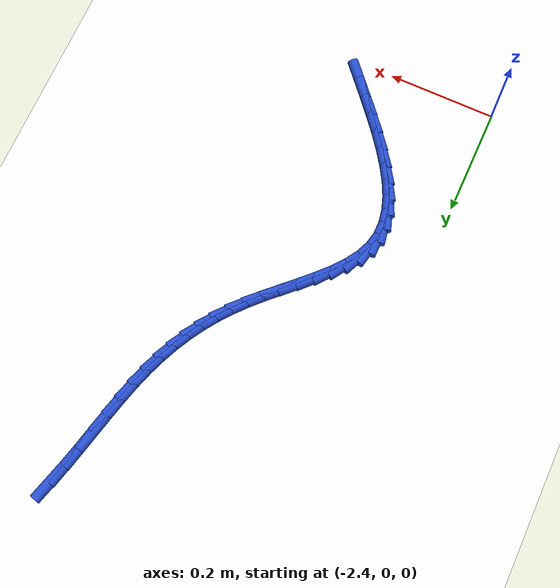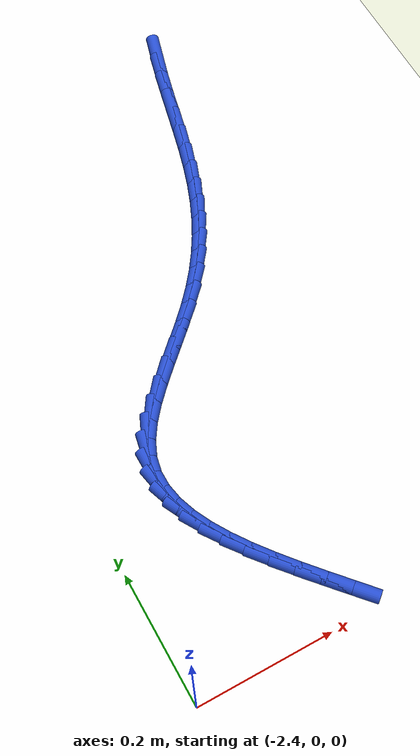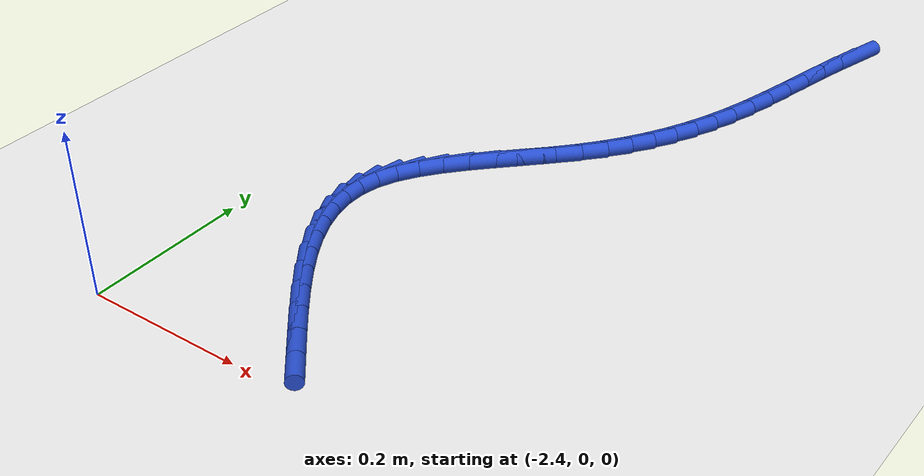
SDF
<sdf version="1.6">
 <world name="default">
  <model name="ground_plane">
   <static>1</static>
   <link name="link">
    <collision name="collision">
     <geometry><plane><normal>0 0 1</normal><size>100 100</size></plane></geometry>
     <surface><friction><ode><mu>100</mu><mu2>50</mu2></ode></friction></surface>
    </collision>
    <visual name="visual">
     <cast_shadows>0</cast_shadows>
     <geometry><plane><normal>0 0 1</normal><size>100 100</size></plane></geometry>
     <material>
      <script><uri>file://media/materials/scripts/gazebo.material</uri><name>Gazebo/WhiteGlow</name></script>
     </material>
    </visual>
   </link>
  </model>
  <model name="line">
   <link name="link_102">
    <pose>-1.9660466423692637 0.935365379532956 0.01 0 1.57 1.2927072455384423</pose>
    <collision name="collision">
     <geometry><cylinder><radius>0.01</radius><length>0.08</length></cylinder></geometry>
    </collision>
    <visual name="visual">
     <material>
      <script><name>Gazebo/Blue</name><uri>file://media/materials/scripts/gazebo.material</uri></script>
     </material>
     <geometry><cylinder><radius>0.01</radius><length>0.08</length></cylinder></geometry>
    </visual>
   </link>
   <link name="link_103">
    <pose>-1.975867164708934 0.9009661303526519 0.01 0 1.57 1.3221698426986555</pose>
    <collision name="collision">
     <geometry><cylinder><radius>0.01</radius><length>0.08</length></cylinder></geometry>
    </collision>
    <visual name="visual">
     <material>
      <script><name>Gazebo/Blue</name><uri>file://media/materials/scripts/gazebo.material</uri></script>
     </material>
     <geometry><cylinder><radius>0.01</radius><length>0.08</length></cylinder></geometry>
    </visual>
   </link>
   <link name="link_104">
    <pose>-1.9848904571305297 0.8654244768239611 0.01 0 1.57 1.3371867595751015</pose>
    <collision name="collision">
     <geometry><cylinder><radius>0.01</radius><length>0.08</length></cylinder></geometry>
    </collision>
    <visual name="visual">
     <material>
      <script><name>Gazebo/Blue</name><uri>file://media/materials/scripts/gazebo.material</uri></script>
     </material>
     <geometry><cylinder><radius>0.01</radius><length>0.08</length></cylinder></geometry>
    </visual>
   </link>
   <link name="link_105">
    <pose>-1.9934611134898959 0.8294063624086807 0.01 0 1.57 1.3388503457237175</pose>
    <collision name="collision">
     <geometry><cylinder><radius>0.01</radius><length>0.08</length></cylinder></geometry>
    </collision>
    <visual name="visual">
     <material>
      <script><name>Gazebo/Blue</name><uri>file://media/materials/scripts/gazebo.material</uri></script>
     </material>
     <geometry><cylinder><radius>0.01</radius><length>0.08</length></cylinder></geometry>
    </visual>
   </link>
   <link name="link_106">
    <pose>-2.001923727642877 0.7935777305686079 0.01 0 1.57 1.3270057661451578</pose>
    <collision name="collision">
     <geometry><cylinder><radius>0.01</radius><length>0.08</length></cylinder></geometry>
    </collision>
    <visual name="visual">
     <material>
      <script><name>Gazebo/Blue</name><uri>file://media/materials/scripts/gazebo.material</uri></script>
     </material>
     <geometry><cylinder><radius>0.01</radius><length>0.08</length></cylinder></geometry>
    </visual>
   </link>
   <link name="link_107">
    <pose>-2.0106228934453196 0.7586045247655403 0.01 0 1.57 1.300180234724623</pose>
    <collision name="collision">
     <geometry><cylinder><radius>0.01</radius><length>0.08</length></cylinder></geometry>
    </collision>
    <visual name="visual">
     <material>
      <script><name>Gazebo/Blue</name><uri>file://media/materials/scripts/gazebo.material</uri></script>
     </material>
     <geometry><cylinder><radius>0.01</radius><length>0.08</length></cylinder></geometry>
    </visual>
   </link>
   <link name="link_108">
    <pose>-2.019903180853616 0.7251525883459156 0.01 0 1.57 1.258384236811561</pose>
    <collision name="collision">
     <geometry><cylinder><radius>0.01</radius><length>0.08</length></cylinder></geometry>
    </collision>
    <visual name="visual">
     <material>
      <script><name>Gazebo/Blue</name><uri>file://media/materials/scripts/gazebo.material</uri></script>
     </material>
     <geometry><cylinder><radius>0.01</radius><length>0.08</length></cylinder></geometry>
    </visual>
   </link>
   <link name="link_109">
    <pose>-2.0300633547259195 0.6936958860451435 0.01 0 1.57 1.2089016913327766</pose>
    <collision name="collision">
     <geometry><cylinder><radius>0.01</radius><length>0.08</length></cylinder></geometry>
    </collision>
    <visual name="visual">
     <material>
      <script><name>Gazebo/Blue</name><uri>file://media/materials/scripts/gazebo.material</uri></script>
     </material>
     <geometry><cylinder><radius>0.01</radius><length>0.08</length></cylinder></geometry>
    </visual>
   </link>
   <link name="link_110">
    <pose>-2.04126098740377 0.6641169238960533 0.01 0 1.57 1.154032345566911</pose>
    <collision name="collision">
     <geometry><cylinder><radius>0.01</radius><length>0.08</length></cylinder></geometry>
    </collision>
    <visual name="visual">
     <material>
      <script><name>Gazebo/Blue</name><uri>file://media/materials/scripts/gazebo.material</uri></script>
     </material>
     <geometry><cylinder><radius>0.01</radius><length>0.08</length></cylinder></geometry>
    </visual>
   </link>
   <link name="link_111">
    <pose>-2.053626532942096 0.6361846088045469 0.01 0 1.57 1.0949889726988837</pose>
    <collision name="collision">
     <geometry><cylinder><radius>0.01</radius><length>0.08</length></cylinder></geometry>
    </collision>
    <visual name="visual">
     <material>
      <script><name>Gazebo/Blue</name><uri>file://media/materials/scripts/gazebo.material</uri></script>
     </material>
     <geometry><cylinder><radius>0.01</radius><length>0.08</length></cylinder></geometry>
    </visual>
   </link>
   <link name="link_112">
    <pose>-2.067290445395825 0.6096678476765265 0.01 0 1.57 1.0334780994776314</pose>
    <collision name="collision">
     <geometry><cylinder><radius>0.01</radius><length>0.08</length></cylinder></geometry>
    </collision>
    <visual name="visual">
     <material>
      <script><name>Gazebo/Blue</name><uri>file://media/materials/scripts/gazebo.material</uri></script>
     </material>
     <geometry><cylinder><radius>0.01</radius><length>0.08</length></cylinder></geometry>
    </visual>
   </link>
   <link name="link_113">
    <pose>-2.082383178819885 0.5843355474178942 0.01 0 1.57 0.9715376107698199</pose>
    <collision name="collision">
     <geometry><cylinder><radius>0.01</radius><length>0.08</length></cylinder></geometry>
    </collision>
    <visual name="visual">
     <material>
      <script><name>Gazebo/Blue</name><uri>file://media/materials/scripts/gazebo.material</uri></script>
     </material>
     <geometry><cylinder><radius>0.01</radius><length>0.08</length></cylinder></geometry>
    </visual>
   </link>
   <link name="link_114">
    <pose>-2.099035187269203 0.5599566149345513 0.01 0 1.57 0.911279566574505</pose>
    <collision name="collision">
     <geometry><cylinder><radius>0.01</radius><length>0.08</length></cylinder></geometry>
    </collision>
    <visual name="visual">
     <material>
      <script><name>Gazebo/Blue</name><uri>file://media/materials/scripts/gazebo.material</uri></script>
     </material>
     <geometry><cylinder><radius>0.01</radius><length>0.08</length></cylinder></geometry>
    </visual>
   </link>
   <link name="link_115">
    <pose>-2.117376924798707 0.5362999571324003 0.01 0 1.57 0.854609754963089</pose>
    <collision name="collision">
     <geometry><cylinder><radius>0.01</radius><length>0.08</length></cylinder></geometry>
    </collision>
    <visual name="visual">
     <material>
      <script><name>Gazebo/Blue</name><uri>file://media/materials/scripts/gazebo.material</uri></script>
     </material>
     <geometry><cylinder><radius>0.01</radius><length>0.08</length></cylinder></geometry>
    </visual>
   </link>
   <link name="link_116">
    <pose>-2.1375388454633253 0.5131344809173431 0.01 0 1.57 0.8042039459244709</pose>
    <collision name="collision">
     <geometry><cylinder><radius>0.01</radius><length>0.08</length></cylinder></geometry>
    </collision>
    <visual name="visual">
     <material>
      <script><name>Gazebo/Blue</name><uri>file://media/materials/scripts/gazebo.material</uri></script>
     </material>
     <geometry><cylinder><radius>0.01</radius><length>0.08</length></cylinder></geometry>
    </visual>
   </link>
   <link name="link_117">
    <pose>-2.1595913467042447 0.4902365519960121 0.01 0 1.57 0.7726773357318931</pose>
    <collision name="collision">
     <geometry><cylinder><radius>0.01</radius><length>0.08</length></cylinder></geometry>
    </collision>
    <visual name="visual">
     <material>
      <script><name>Gazebo/Blue</name><uri>file://media/materials/scripts/gazebo.material</uri></script>
     </material>
     <geometry><cylinder><radius>0.01</radius><length>0.08</length></cylinder></geometry>
    </visual>
   </link>
   <link name="link_118">
    <pose>-2.1829510403541015 0.46746373373623074 0.01 0 1.57 0.7651176140945208</pose>
    <collision name="collision">
     <geometry><cylinder><radius>0.01</radius><length>0.08</length></cylinder></geometry>
    </collision>
    <visual name="visual">
     <material>
      <script><name>Gazebo/Blue</name><uri>file://media/materials/scripts/gazebo.material</uri></script>
     </material>
     <geometry><cylinder><radius>0.01</radius><length>0.08</length></cylinder></geometry>
    </visual>
   </link>
   <link name="link_119">
    <pose>-2.2066328975224243 0.4447234717408062 0.01 0 1.57 0.7807354393282722</pose>
    <collision name="collision">
     <geometry><cylinder><radius>0.01</radius><length>0.08</length></cylinder></geometry>
    </collision>
    <visual name="visual">
     <material>
      <script><name>Gazebo/Blue</name><uri>file://media/materials/scripts/gazebo.material</uri></script>
     </material>
     <geometry><cylinder><radius>0.01</radius><length>0.08</length></cylinder></geometry>
    </visual>
   </link>
   <link name="link_120">
    <pose>-2.2296460452880202 0.4219239374187126 0.01 0 1.57 0.821430380301404</pose>
    <collision name="collision">
     <geometry><cylinder><radius>0.01</radius><length>0.08</length></cylinder></geometry>
    </collision>
    <visual name="visual">
     <material>
      <script><name>Gazebo/Blue</name><uri>file://media/materials/scripts/gazebo.material</uri></script>
     </material>
     <geometry><cylinder><radius>0.01</radius><length>0.08</length></cylinder></geometry>
    </visual>
   </link>
   <link name="link_121">
    <pose>-2.2509996107296977 0.398973302178924 0.01 0 1.57 0.8921698240808598</pose>
    <collision name="collision">
     <geometry><cylinder><radius>0.01</radius><length>0.08</length></cylinder></geometry>
    </collision>
    <visual name="visual">
     <material>
      <script><name>Gazebo/Blue</name><uri>file://media/materials/scripts/gazebo.material</uri></script>
     </material>
     <geometry><cylinder><radius>0.01</radius><length>0.08</length></cylinder></geometry>
    </visual>
   </link>
   <link name="link_122">
    <pose>-2.2697027209262637 0.3757797374304147 0.01 0 1.57 1.001372926383263</pose>
    <collision name="collision">
     <geometry><cylinder><radius>0.01</radius><length>0.08</length></cylinder></geometry>
    </collision>
    <visual name="visual">
     <material>
      <script><name>Gazebo/Blue</name><uri>file://media/materials/scripts/gazebo.material</uri></script>
     </material>
     <geometry><cylinder><radius>0.01</radius><length>0.08</length></cylinder></geometry>
    </visual>
   </link>
   <link name="link_123">
    <pose>-2.284764502956528 0.35225141458215914 0.01 0 1.57 1.160163358918053</pose>
    <collision name="collision">
     <geometry><cylinder><radius>0.01</radius><length>0.08</length></cylinder></geometry>
    </collision>
    <visual name="visual">
     <material>
      <script><name>Gazebo/Blue</name><uri>file://media/materials/scripts/gazebo.material</uri></script>
     </material>
     <geometry><cylinder><radius>0.01</radius><length>0.08</length></cylinder></geometry>
    </visual>
   </link>
   <link name="link_124">
    <pose>-2.295194086019718 0.3282965052130225 0.01 0 1.57 1.3664664401117363</pose>
    <collision name="collision">
     <geometry><cylinder><radius>0.01</radius><length>0.08</length></cylinder></geometry>
    </collision>
    <visual name="visual">
     <material>
      <script><name>Gazebo/Blue</name><uri>file://media/materials/scripts/gazebo.material</uri></script>
     </material>
     <geometry><cylinder><radius>0.01</radius><length>0.08</length></cylinder></geometry>
    </visual>
   </link>
   <link name="link_125">
    <pose>-2.3002611669103374 0.3038440580111148 0.01 0 1.57 -1.5689652550183486</pose>
    <collision name="collision">
     <geometry><cylinder><radius>0.01</radius><length>0.08</length></cylinder></geometry>
    </collision>
    <visual name="visual">
     <material>
      <script><name>Gazebo/Blue</name><uri>file://media/materials/scripts/gazebo.material</uri></script>
     </material>
     <geometry><cylinder><radius>0.01</radius><length>0.08</length></cylinder></geometry>
    </visual>
   </link>
   <link name="link_126">
    <pose>-2.300215495511063 0.2789016451485018 0.01 0 1.57 -1.388697299877915</pose>
    <collision name="collision">
     <geometry><cylinder><radius>0.01</radius><length>0.08</length></cylinder></geometry>
    </collision>
    <visual name="visual">
     <material>
      <script><name>Gazebo/Blue</name><uri>file://media/materials/scripts/gazebo.material</uri></script>
     </material>
     <geometry><cylinder><radius>0.01</radius><length>0.08</length></cylinder></geometry>
    </visual>
   </link>
   <link name="link_127">
    <pose>-2.2955371986942152 0.2534952969849416 0.01 0 1.57 -1.2415412085038042</pose>
    <collision name="collision">
     <geometry><cylinder><radius>0.01</radius><length>0.08</length></cylinder></geometry>
    </collision>
    <visual name="visual">
     <material>
      <script><name>Gazebo/Blue</name><uri>file://media/materials/scripts/gazebo.material</uri></script>
     </material>
     <geometry><cylinder><radius>0.01</radius><length>0.08</length></cylinder></geometry>
    </visual>
   </link>
   <link name="link_128">
    <pose>-2.286706403332114 0.2276510438801922 0.01 0 1.57 -1.1263693836089619</pose>
    <collision name="collision">
     <geometry><cylinder><radius>0.01</radius><length>0.08</length></cylinder></geometry>
    </collision>
    <visual name="visual">
     <material>
      <script><name>Gazebo/Blue</name><uri>file://media/materials/scripts/gazebo.material</uri></script>
     </material>
     <geometry><cylinder><radius>0.01</radius><length>0.08</length></cylinder></geometry>
    </visual>
   </link>
   <link name="link_129">
    <pose>-2.2742032362970797 0.20139491619401156 0.01 0 1.57 -1.03841263760796</pose>
    <collision name="collision">
     <geometry><cylinder><radius>0.01</radius><length>0.08</length></cylinder></geometry>
    </collision>
    <visual name="visual">
     <material>
      <script><name>Gazebo/Blue</name><uri>file://media/materials/scripts/gazebo.material</uri></script>
     </material>
     <geometry><cylinder><radius>0.01</radius><length>0.08</length></cylinder></geometry>
    </visual>
   </link>
   <link name="link_130">
    <pose>-2.2585078244614323 0.17475294428615773 0.01 0 1.57 -0.9724476873907664</pose>
    <collision name="collision">
     <geometry><cylinder><radius>0.01</radius><length>0.08</length></cylinder></geometry>
    </collision>
    <visual name="visual">
     <material>
      <script><name>Gazebo/Blue</name><uri>file://media/materials/scripts/gazebo.material</uri></script>
     </material>
     <geometry><cylinder><radius>0.01</radius><length>0.08</length></cylinder></geometry>
    </visual>
   </link>
   <link name="link_131">
    <pose>-2.240100294697492 0.14775115851638884 0.01 0 1.57 -0.9240757221711742</pose>
    <collision name="collision">
     <geometry><cylinder><radius>0.01</radius><length>0.08</length></cylinder></geometry>
    </collision>
    <visual name="visual">
     <material>
      <script><name>Gazebo/Blue</name><uri>file://media/materials/scripts/gazebo.material</uri></script>
     </material>
     <geometry><cylinder><radius>0.01</radius><length>0.08</length></cylinder></geometry>
    </visual>
   </link>
   <link name="link_132">
    <pose>-2.2194607738775796 0.12041558924446272 0.01 0 1.57 -0.8899810792300304</pose>
    <collision name="collision">
     <geometry><cylinder><radius>0.01</radius><length>0.08</length></cylinder></geometry>
    </collision>
    <visual name="visual">
     <material>
      <script><name>Gazebo/Blue</name><uri>file://media/materials/scripts/gazebo.material</uri></script>
     </material>
     <geometry><cylinder><radius>0.01</radius><length>0.08</length></cylinder></geometry>
    </visual>
   </link>
   <link name="link_133">
    <pose>-2.1970693888740134 0.09277226683013745 0.01 0 1.57 -0.8678253272322163</pose>
    <collision name="collision">
     <geometry><cylinder><radius>0.01</radius><length>0.08</length></cylinder></geometry>
    </collision>
    <visual name="visual">
     <material>
      <script><name>Gazebo/Blue</name><uri>file://media/materials/scripts/gazebo.material</uri></script>
     </material>
     <geometry><cylinder><radius>0.01</radius><length>0.08</length></cylinder></geometry>
    </visual>
   </link>
   <link name="link_134">
    <pose>-2.173406266559116 0.06484722163317158 0.01 0 1.57 -0.8560691337073291</pose>
    <collision name="collision">
     <geometry><cylinder><radius>0.01</radius><length>0.08</length></cylinder></geometry>
    </collision>
    <visual name="visual">
     <material>
      <script><name>Gazebo/Blue</name><uri>file://media/materials/scripts/gazebo.material</uri></script>
     </material>
     <geometry><cylinder><radius>0.01</radius><length>0.08</length></cylinder></geometry>
    </visual>
   </link>
   <link name="link_135">
    <pose>-2.148951533805205 0.03666648401332215 0.01 0 1.57 -0.8538209944956001</pose>
    <collision name="collision">
     <geometry><cylinder><radius>0.01</radius><length>0.08</length></cylinder></geometry>
    </collision>
    <visual name="visual">
     <material>
      <script><name>Gazebo/Blue</name><uri>file://media/materials/scripts/gazebo.material</uri></script>
     </material>
     <geometry><cylinder><radius>0.01</radius><length>0.08</length></cylinder></geometry>
    </visual>
   </link>
  </model>
 </world>
</sdf>
